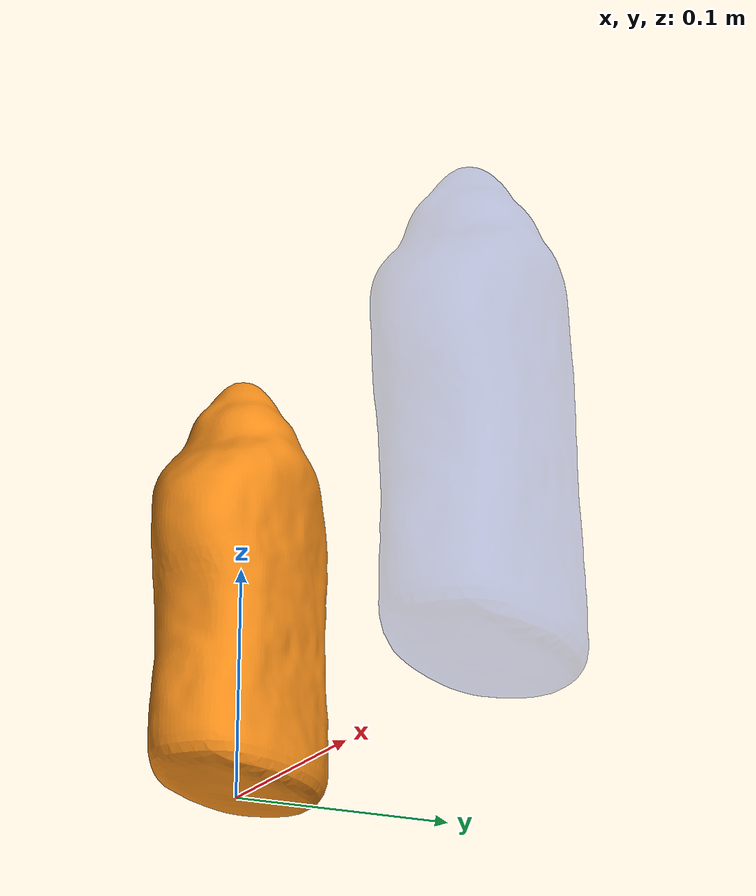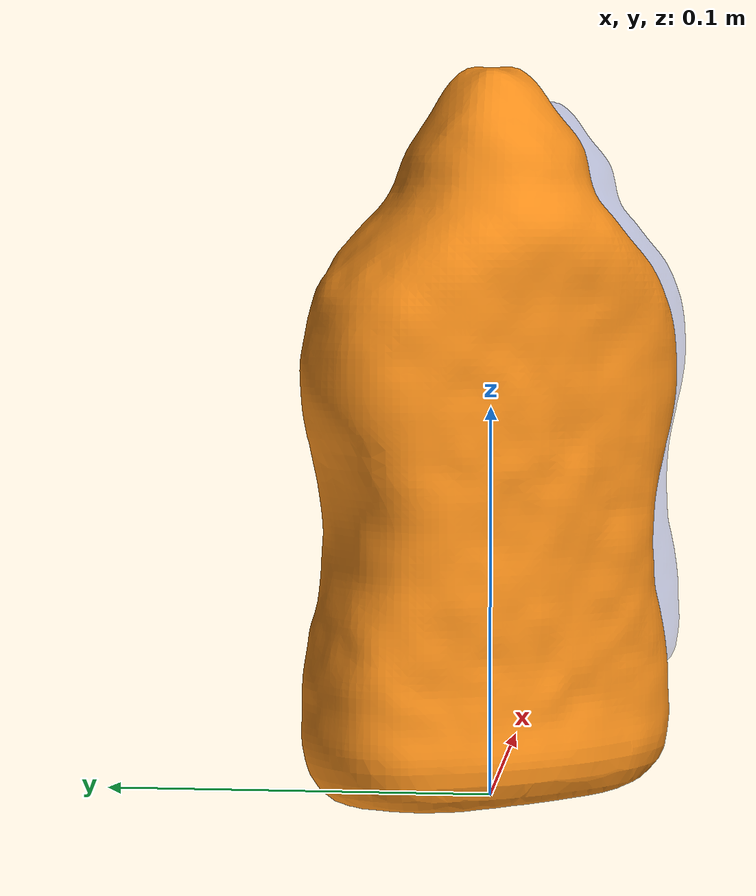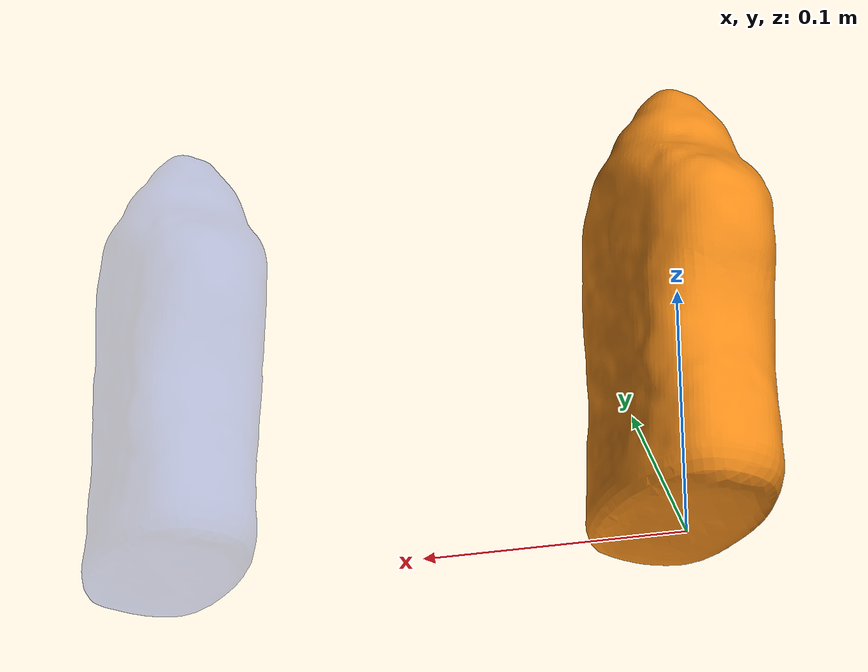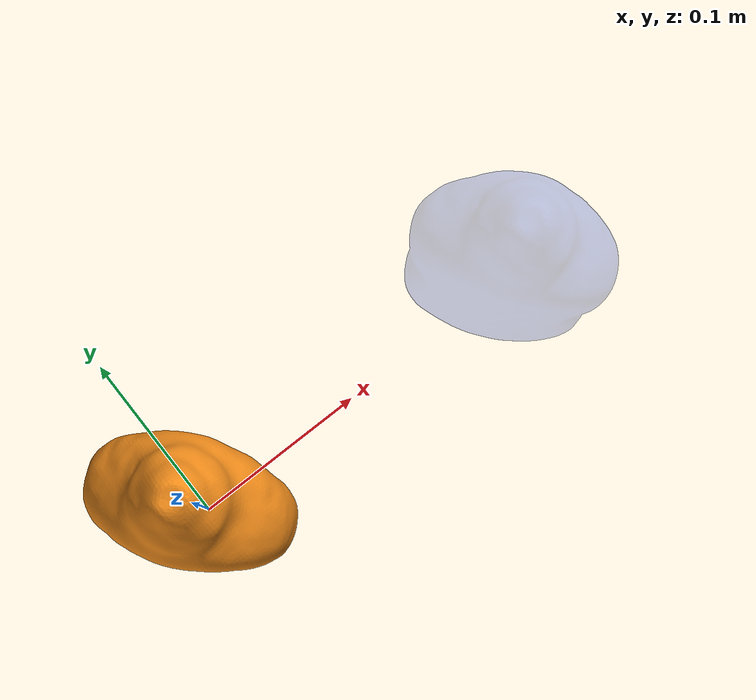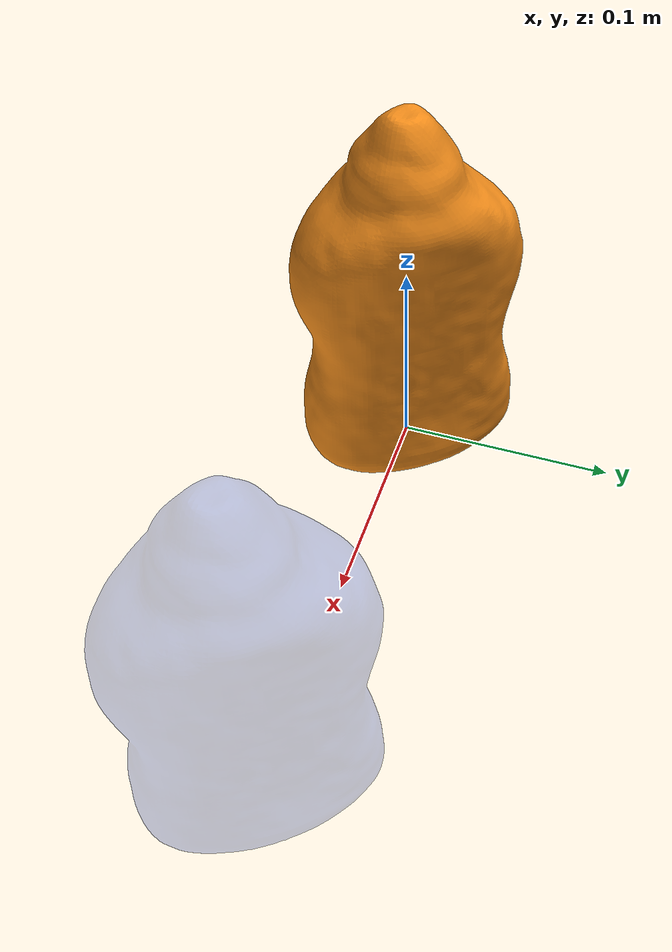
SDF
<?xml version="1.0"?>

<sdf version="1.5">
  <model name='mustard'>
    <link name='mustard_root_link'>
      <!-- The origin of the mesh is at approx 0.0932 from the bottom of the bottle -->
      <pose>0 0 0.0932 0 0 0</pose>
      <inertial>
	<!-- CoM evaluated using Meshlab assuming a homogeneous body-->
	<!-- expressed w.r.t. the origin of the mesh -->
	<pose>0.000134 0.000351 -0.013002 0 0 0</pose>
        <mass>0.5</mass>
        <inertia>
	  <!-- Obtained from Meshlab -->
          <ixx>0.0013042280945758</ixx>
          <ixy>8.510431154381e-05</ixy>
          <ixz>6.703755215575e-06</ixz>
          <iyy>0.00125499304589708</iyy>
          <iyz>1.4381084840055e-05</iyz>
          <izz>0.00039327538247566</izz>
        </inertia>
      </inertial>
      <collision name='mustard_collision'>
        <geometry>
          <mesh><uri>model://mustard/mustard.stl</uri></mesh>
        </geometry>
	<surface>
          <friction>
            <ode>
              <mu>0.1</mu>
              <mu2>0.1</mu2>
            </ode>
          </friction>
	</surface>
      </collision>
      <visual name='mustard_visual'>
        <geometry>
          <mesh><uri>model://mustard/mustard.dae</uri></mesh>
        </geometry>
        <material>
	  <script>
	    <uri>file://media/materials/scripts/gazebo.material</uri>
	    <name>Gazebo/Orange</name>
	  </script>
        </material>
      </visual>
    </link>
    <link name="mustard_estimate_link">
      <pose>0.2 0 0.0932 0 0 0</pose>
      <gravity>false</gravity>
      <kinematic>true</kinematic>
      <visual name='mustard_estimate_visual'>
	<plugin name="viewer" filename='libgazebo_yarp_estimateViewer.so'></plugin>
        <geometry>
          <mesh><uri>model://mustard/mustard.dae</uri></mesh>
        </geometry>
        <material>
	  <script>
	    <uri>file://media/materials/scripts/gazebo.material</uri>
	    <name>Gazebo/Blue</name>
	  </script>
        </material>
	<transparency>0.7</transparency>
      </visual>
    </link>
    <joint name="fixed_estimate" type="fixed">
      <parent>world</parent>
      <child>mustard_estimate_link</child>
    </joint>
    <plugin name="pose_publisher" filename='libgazebo_yarp_modelposepublisher.so'>
      <period>0.01</period>
    </plugin>
    <plugin name="point_cloud" filename='libgazebo_yarp_fakePointCloud.so'>
      <period>1.0</period>
      <observerOrigin>0 0.07 0.93</observerOrigin>
      <numPoints>100</numPoints>
      <meshPath>model://mustard/mustard.off</meshPath>
      <showPointCloud>true</showPointCloud>
    </plugin>
  </model>
</sdf>
